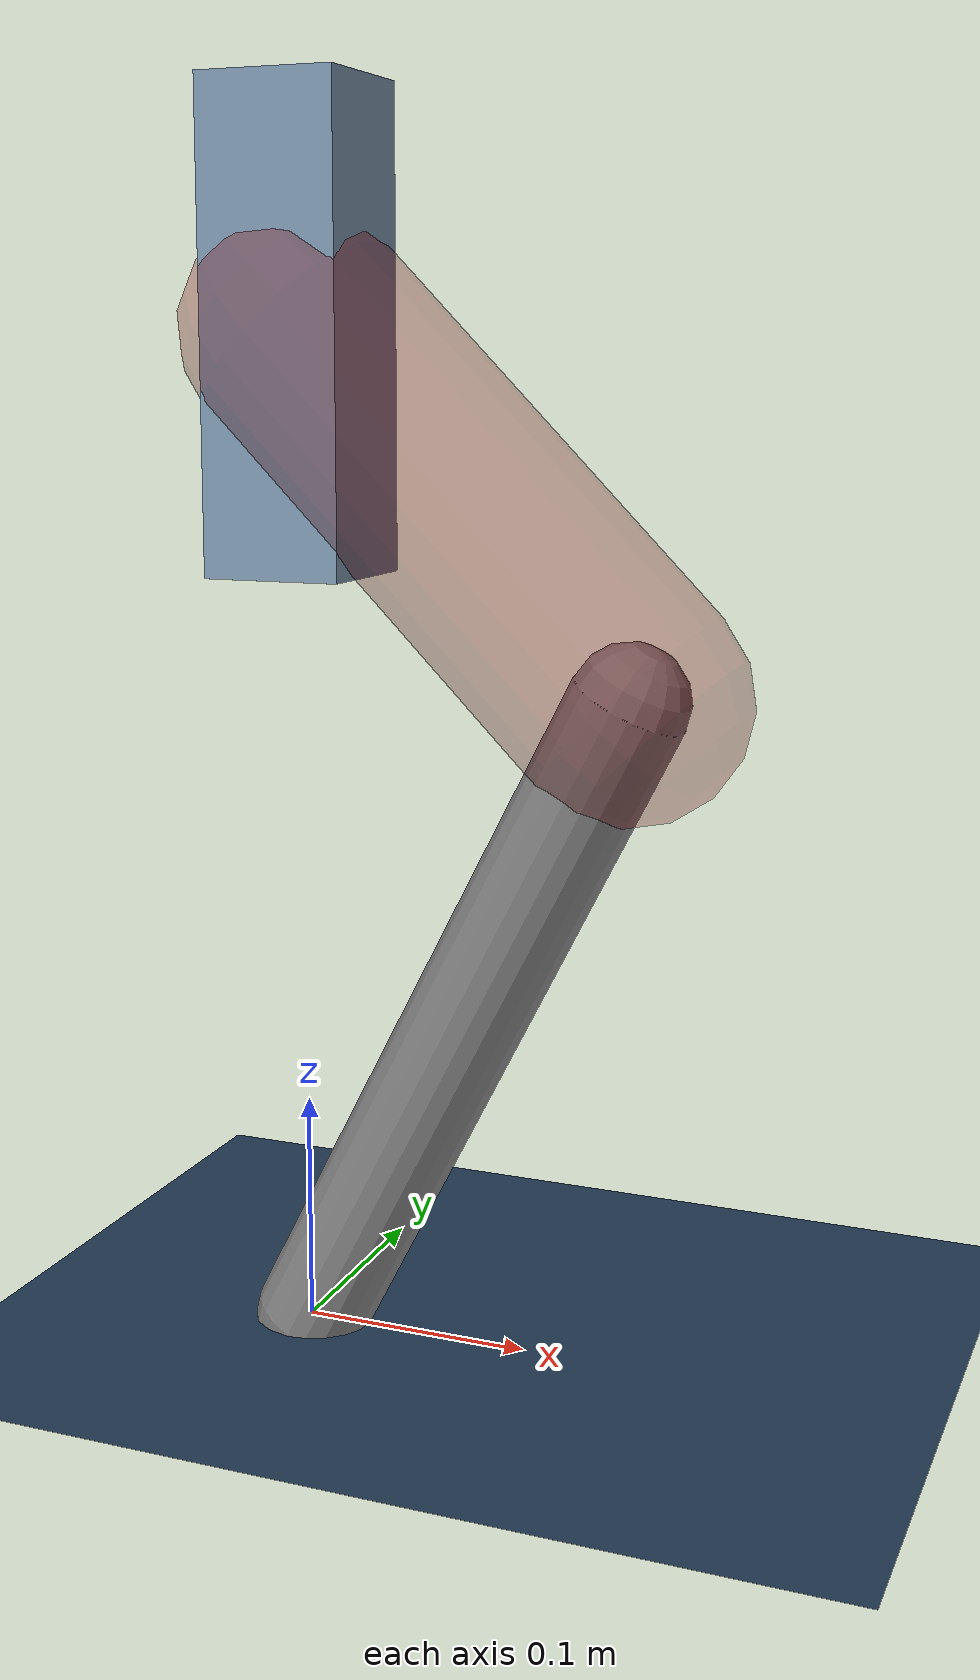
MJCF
<mujoco model="Hopper2D">
	<compiler inertiafromgeom="true" angle="radian" />
	<option timestep="0.001" integrator="implicit" cone="elliptic" solver="Newton" tolerance="1e-10" />

	<default>
		<geom contype="1" conaffinity="1" condim="3" friction="2 0.005 0.0001" solref="0.005 1" />
		<joint limited="true" damping="0.1" />
	</default>

	<asset>
		<texture name="skybox" type="skybox" builtin="gradient" rgb1=".4 .6 .8" rgb2="0 0 0" width="800" height="800" />
		<texture name="grid" type="2d" builtin="checker" rgb1=".1 .2 .3" rgb2=".2 .3 .4" width="300" height="300" mark="edge" markrgb=".2 .3 .4" />
		<material name="ground" texture="grid" texrepeat="1 1" texuniform="true" reflectance="0.1" />
		<material name="leg" rgba="0.5 0.6 0.7 1" />
	</asset>

	<worldbody>

		<geom name="floor" type="plane" size="5 5 0.25" material="ground" />

		<light directional="false" diffuse="0.8 0.8 0.8" specular="0.3 0.3 0.3" pos="0 0 2" dir="0 0 -1" />
		<light mode="targetbodycom" target="base" directional="false" diffuse="0.8 0.8 0.8" specular="0.3 0.3 0.3" pos="0 0 2" dir="0 0 -1" />

		<camera name="fixed" pos="0 -2 1" xyaxes="1 0 0 0 0 1" />
		<camera name="tracking" mode="trackcom" pos="0 -3 1" />

		<body name="root" pos="0 0 0.4297490748641913">
			<joint name="slide_x" type="slide" axis="1 0 0" range="-100 100" />
			<joint name="slide_z" type="slide" axis="0 0 1" range="0 10" />

			<body name="base" pos="0 0 0">
				<geom name="torso" type="box" size="0.03 0.03 0.1" mass="3.384" material="leg" />

				<body name="link1" pos="0 0 0" euler="0 0.7930190303610354 0">
					<joint type="hinge" axis="0 -1 0" pos="0 0 0" name="hinge1" limited="true" range="-3.14 3.14" stiffness="0" damping="0.1" />
					<geom name="thigh" type="capsule" fromto="0 0 0 0.20494976404748153 0 0" size="0.05" rgba="0.5 0 0 0.3" mass="0.7419744101187038" />

					<body name="link2" pos="0.20494976404748153 0 0" euler="0 1.2469051894612455 0">
						<joint type="hinge" axis="0 -1 0" pos="0 0 0" name="hinge2" limited="true" range="-3.14 3.14" stiffness="0" damping="0.1" />
						<geom name="shank" type="capsule" fromto="0 0 0 0.3180933813243972 0 0" size="0.025" mass="0.4980840431919575" />

					</body>
				</body>
			</body>
		</body>
	</worldbody>

	<actuator>
		<motor name="torque1" joint="hinge1" ctrlrange="-115.47194762684094 115.47194762684094" ctrllimited="true" gear="1" />
		<motor name="torque2" joint="hinge2" ctrlrange="-58.73800026400746 58.73800026400746" ctrllimited="true" gear="1" />
	</actuator>
</mujoco>
